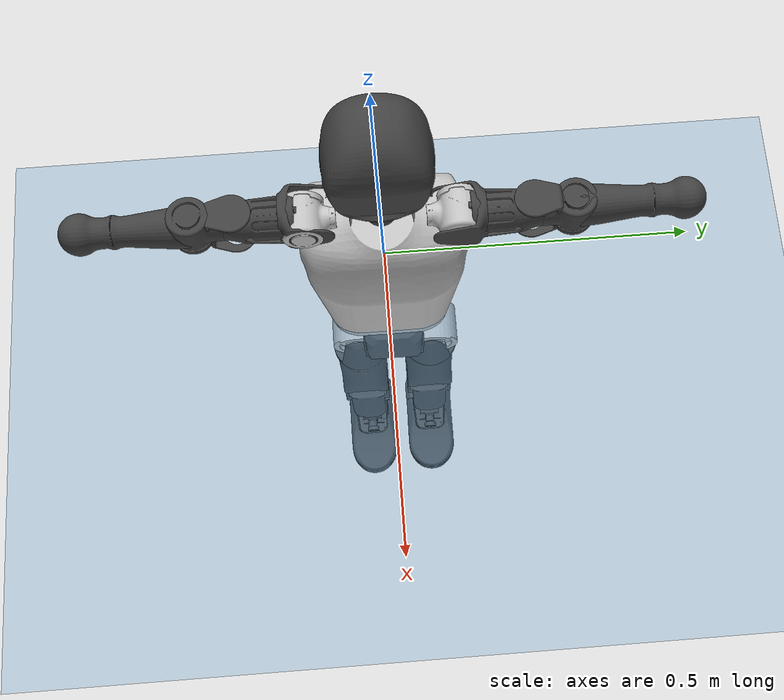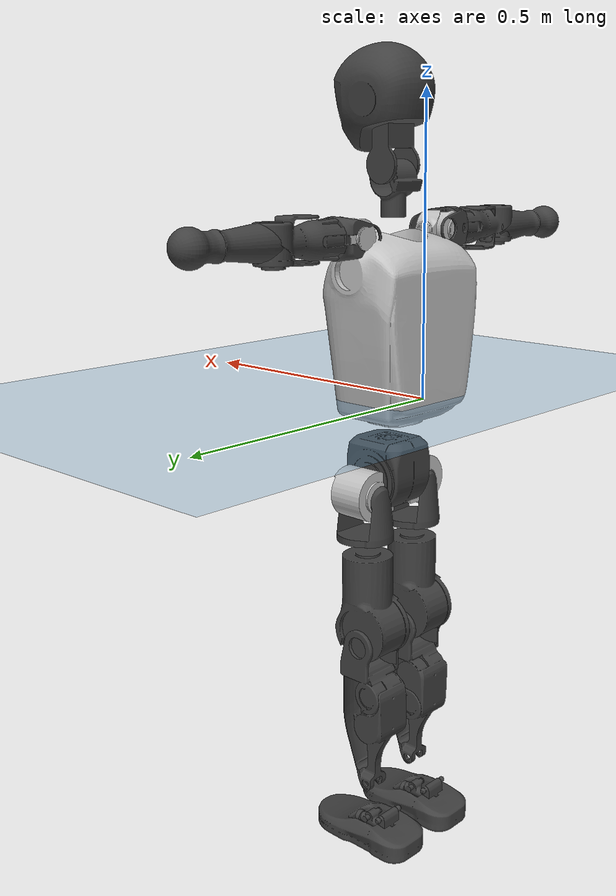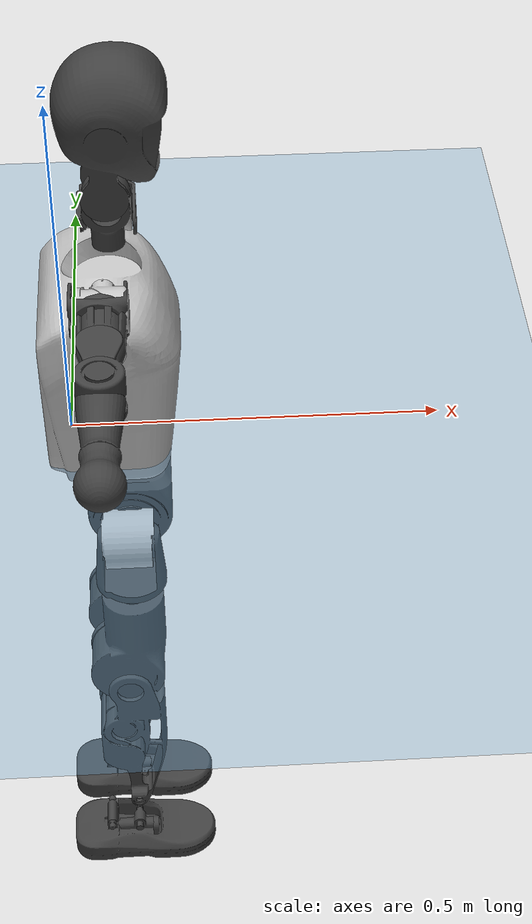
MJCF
<mujoco model="T1">
  <compiler angle="radian" assetdir="assets" balanceinertia="true" inertiafromgeom="false"/>

  <option timestep="0.005" density="1.2" viscosity="2e-05"/>

  <size nkey="1"/>

  <visual>
    <quality shadowsize="8192"/>
    <map shadowclip="0.5"/>
  </visual>

  <default>
    <default class="/">
      <joint armature="0.01" damping="0.01" frictionloss="0.1"/>
      <geom contype="0" conaffinity="0" group="1" solref="-1000 -80"/>
      <site size="0.01 0.005 0.005" group="5"/>
      <general forcelimited="true" biastype="affine" gainprm="25" biasprm="0 -25 -0.6"/>
      <default class="t1">
        <geom rgba="0.25 0.25 0.25 1"/>
        <default class="visual">
          <geom type="mesh" group="2"/>
        </default>
        <default class="collision">
          <geom group="3"/>
        </default>
        <default class="foot">
          <geom size="0.1115 0.05 0.015" type="box" condim="6" group="4" priority="1" solimp="0.015 1 0.015"/>
        </default>
        <default class="reward_collision_sphere">
          <geom group="5" rgba="1 0 0 1"/>
        </default>
      </default>
    </default>
  </default>

  <asset>
    <texture type="skybox" colorspace="auto" name="//unnamed_texture_0" builtin="gradient" rgb1="0.95 0.95 0.95" rgb2="0.95 0.95 0.95" width="100" height="600"/>
    <texture type="2d" colorspace="auto" name="texplane" builtin="checker" rgb1="0.345 0.575 0.748" rgb2="0.345 0.575 0.748" markrgb="1 1 1" width="512" height="512"/>
    <material name="MatPlane" class="/" texture="texplane" texuniform="true" texrepeat="2 2" specular="0.9"/>
    <mesh name="Trunk" class="/" file="Trunk.stl"/>
    <mesh name="H1" class="/" file="H1.stl"/>
    <mesh name="H2" class="/" file="H2.stl"/>
    <mesh name="AL1" class="/" file="AL1.stl"/>
    <mesh name="AL2" class="/" file="AL2.stl"/>
    <mesh name="AL3" class="/" file="AL3.stl"/>
    <mesh name="left_hand_link" class="/" file="left_hand_link.stl"/>
    <mesh name="AR1" class="/" file="AR1.stl"/>
    <mesh name="AR2" class="/" file="AR2.stl"/>
    <mesh name="AR3" class="/" file="AR3.stl"/>
    <mesh name="right_hand_link" class="/" file="right_hand_link.stl"/>
    <mesh name="Waist" class="/" file="Waist.stl"/>
    <mesh name="Hip_Pitch_Left" class="/" file="Hip_Pitch_Left.stl"/>
    <mesh name="Hip_Roll_Left" class="/" file="Hip_Roll_Left.stl"/>
    <mesh name="Hip_Yaw_Left" class="/" file="Hip_Yaw_Left.stl"/>
    <mesh name="Shank_Left" class="/" file="Shank_Left.stl"/>
    <mesh name="Ankle_Cross_Left" class="/" file="Ankle_Cross_Left.stl"/>
    <mesh name="left_foot_link" class="/" file="left_foot_link.stl"/>
    <mesh name="Hip_Pitch_Right" class="/" file="Hip_Pitch_Right.stl"/>
    <mesh name="Hip_Roll_Right" class="/" file="Hip_Roll_Right.stl"/>
    <mesh name="Hip_Yaw_Right" class="/" file="Hip_Yaw_Right.stl"/>
    <mesh name="Shank_Right" class="/" file="Shank_Right.stl"/>
    <mesh name="Ankle_Cross_Right" class="/" file="Ankle_Cross_Right.stl"/>
    <mesh name="right_foot_link" class="/" file="right_foot_link.stl"/>
  </asset>

  <worldbody>
    <geom name="floor" class="/" size="100 100 0.125" type="plane" group="0" material="MatPlane"/>
    <light name="toplight_shadow" class="/" pos="0 0 5" dir="0.0990148 0.0990148 -0.990148" type="directional" ambient="0.04 0.04 0.04" diffuse="0.55 0.55 0.55" specular="0.12 0.12 0.12"/>
    <light name="toplight_fill" class="/" pos="0 0 5" dir="0.0990148 0.0990148 -0.990148" type="directional" castshadow="false" ambient="0.04 0.04 0.04" diffuse="0.3 0.3 0.3" specular="0.08 0.08 0.08"/>
    <body name="trunk" childclass="t1" pos="-0.000253252 0.00244344 -0.00190377" quat="1 -0.000371081 1.3358e-05 -0.000143437">
      <inertial pos="0.0552621 0.000366176 0.132217" quat="0.999965 -0.000160153 -0.00823885 -0.00115788" mass="10.5202" diaginertia="0.124086 0.00532687 0.157329"/>
      <joint name="//unnamed_joint_0" type="free" armature="0" damping="0" frictionloss="0"/>
      <geom name="//unnamed_geom_1" class="visual" rgba="0.76 0.76 0.76 1" mesh="Trunk"/>
      <geom name="//unnamed_geom_2" class="collision" size="0.0724701 0.0966269 0.14494" pos="0.0640251 0 0.149031" type="box"/>
      <geom name="//unnamed_geom_3" class="reward_collision_sphere" size="0.111121" pos="0.0640251 0 0.124192"/>
      <geom name="//unnamed_geom_4" class="reward_collision_sphere" size="0.014494" pos="0.0640251 0.0501328 0"/>
      <geom name="//unnamed_geom_5" class="reward_collision_sphere" size="0.014494" pos="0.0640251 -0.0501328 0"/>
      <geom name="//unnamed_geom_6" class="reward_collision_sphere" size="0.014494" pos="0.0640251 0.0631084 0.223546"/>
      <geom name="//unnamed_geom_7" class="reward_collision_sphere" size="0.014494" pos="0.0640251 -0.0631084 0.223546"/>
      <site name="imu" pos="-0.00100668 -0.0167349 -0.00699869" size="0.00966269"/>
      <camera name="track" pos="0 -1.1796 0" quat="0.707107 0.707107 0 0" mode="trackcom"/>
      <camera name="ego_camera" pos="0.130184 0 0.521607" quat="-0.5 -0.5 0.5 0.5"/>
      <body name="H1" pos="0.0669483 -0.000417947 0.299889" quat="0.999999 -0.00152517 0.000289761 3.56585e-06">
        <inertial pos="-0.00082457 -0.00417052 0.0725954" quat="0.768359 -0.0106782 0.00818171 0.639877" mass="0.40806" diaginertia="0.000323605 1.56767e-05 0.000419141"/>
        <joint name="AAHead_yaw" pos="0 0 0" axis="0.00610283 -0.00741821 0.999954" range="-1.54192 1.47034" armature="0.00913211" damping="0.011069" frictionloss="0.0992573"/>
        <geom name="//unnamed_geom_8" class="visual" mesh="H1"/>
        <body name="H2" pos="-0.000480683 0.00105724 0.0832595" quat="0.999995 0.000583629 0.00179983 0.00235698">
          <inertial pos="0.00668096 -0.00045854 0.120628" quat="0.988402 0.105315 -0.076976 -0.0777477" mass="0.56954" diaginertia="0.00279729 0.000131953 0.00529924"/>
          <joint name="Head_pitch" pos="0 0 0" axis="0.00566006 -0.999962 -0.00667211" stiffness="0.000833639" range="-1.17319 0.350058" armature="0.00994313" damping="0.00969415" frictionloss="0.0989355"/>
          <geom name="//unnamed_geom_9" class="visual" mesh="H2"/>
          <geom name="//unnamed_geom_10" class="collision" size="0.0773015" pos="0.0106709 0 0.136611"/>
          <geom name="//unnamed_geom_11" class="reward_collision_sphere" size="0.0869642" pos="0.0213417 0 0.124192"/>
        </body>
      </body>
      <body name="AL1" pos="0.0633024 0.0631625 0.272921" quat="1 -0.000261974 0.000468271 0.000635147">
        <inertial pos="0.00109042 0.0264462 -5.87611e-05" quat="0.520193 0.493711 -0.499678 0.485767" mass="0.497924" diaginertia="0.00190975 9.43552e-05 0.000869499"/>
        <joint name="Left_Shoulder_Pitch" pos="0 0 0" axis="-0.00100971 0.999999 0.000917223" range="-3.39806 1.20633" armature="0.0102563" damping="0.00530011" frictionloss="0.0918291"/>
        <geom name="//unnamed_geom_12" class="visual" rgba="0.76 0.76 0.76 1" mesh="AL1"/>
        <body name="AL2" pos="0.00162051 0.0279425 -0.000268528" quat="0.999998 -0.00121325 0.00139347 0.000612363">
          <inertial pos="-0.00136202 0.0226486 9.65691e-05" quat="0.488774 0.512083 -0.486986 0.511581" mass="0.149616" diaginertia="0.000579193 2.5201e-05 0.000562332"/>
          <joint name="Left_Shoulder_Roll" pos="0 0 0" axis="-0.999955 -0.00368069 0.00871028" range="-1.57264 1.69218" armature="0.00933642" damping="0" frictionloss="0.0860355"/>
          <geom name="//unnamed_geom_13" class="visual" mesh="AL2"/>
          <body name="AL3" pos="0.0010136 0.034437 -0.000403789" quat="0.999999 0.00163975 -0.000398884 -0.000328107">
            <inertial pos="-0.00451191 0.0527181 0.000453931" quat="0.712612 0.701019 0.00337872 -0.027321" mass="0.857413" diaginertia="0.0160854 0.000782954 0.00173328"/>
            <joint name="Left_Elbow_Pitch" pos="0 0 0" axis="0.0120471 -0.999926 -0.00162964" range="-2.29977 2.16457" armature="0.00839555" damping="0.00973095" frictionloss="0.0711941"/>
            <geom name="//unnamed_geom_14" class="visual" mesh="AL3"/>
            <geom name="//unnamed_geom_15" class="collision" size="0.0289881 0.0724701" pos="0 0.0294899 0" quat="0.707105 0.707108 0 0" type="cylinder"/>
            <geom name="//unnamed_geom_16" class="reward_collision_sphere" size="0.0347857"/>
            <body name="left_hand_link" pos="0.000524113 0.0881391 0.00257704" quat="0.999997 0.00213487 0.00128425 0.00027935">
              <inertial pos="-0.00266641 0.063133 0.00177075" quat="0.702945 0.711182 0.000403107 0.00941613" mass="0.290347" diaginertia="0.0105247 0.000559441 0.000653746"/>
              <joint name="Left_Elbow_Yaw" pos="0 0 0" axis="0.00435433 -0.0139551 0.999893" stiffness="0.00555175" range="-2.45323 -0.102856" armature="0.010766" damping="0.0216152" frictionloss="0.0987839"/>
              <geom name="//unnamed_geom_17" class="visual" mesh="left_hand_link"/>
              <geom name="//unnamed_geom_18" class="collision" size="0.0289881 0.0845485" pos="0 0.0766737 0" quat="0.707105 0.707108 0 0" type="cylinder"/>
              <geom name="//unnamed_geom_19" class="reward_collision_sphere" size="0.0483134"/>
              <geom name="//unnamed_geom_20" class="reward_collision_sphere" size="0.0338194" pos="0 0.0648778 0"/>
              <geom name="//unnamed_geom_21" class="reward_collision_sphere" size="0.0338194" pos="0 0.126807 0"/>
            </body>
          </body>
        </body>
      </body>
      <body name="AR1" pos="0.0585329 -0.0646837 0.275902" quat="1 8.83326e-05 0.000450404 0.000137073">
        <inertial pos="-0.00174859 -0.0234606 0.00063272" quat="0.49741 0.498765 -0.511407 0.492219" mass="0.477928" diaginertia="0.0018725 9.13914e-05 0.000854721"/>
        <joint name="Right_Shoulder_Pitch" pos="0 0 0" axis="-0.022796 -0.999618 -0.0156117" range="-1.23135 3.22364" armature="0.00855267" damping="0.0109457" frictionloss="0.119288"/>
        <geom name="//unnamed_geom_22" class="visual" rgba="0.76 0.76 0.76 1" mesh="AR1"/>
        <body name="AR2" pos="-0.00575298 -0.0236059 0.00208862" quat="1 -1.34341e-05 -4.68686e-05 1.22644e-06">
          <inertial pos="0.00236589 -0.0231302 0.00324245" quat="0.515128 0.48105 -0.51688 0.48587" mass="0.129144" diaginertia="0.000529345 2.31957e-05 0.000485245"/>
          <joint name="Right_Shoulder_Roll" pos="0 0 0" axis="-0.99991 -0.00522106 -0.012329" stiffness="0.011323" range="-1.74619 1.53778" armature="0.00848282" damping="0.0162129" frictionloss="0.0844153"/>
          <geom name="//unnamed_geom_23" class="visual" mesh="AR2"/>
          <body name="AR3" pos="0.00311473 -0.0333795 -0.000968017" quat="1 -5.2391e-05 2.94354e-05 -0.000127602">
            <inertial pos="0.000531603 -0.0524726 0.00161124" quat="0.707666 0.706526 0.00399736 -0.00372272" mass="0.823555" diaginertia="0.0164012 0.000847416 0.0017006"/>
            <joint name="Right_Elbow_Pitch" pos="0 0 0" axis="0.00433818 0.999977 0.00520636" stiffness="0.0319183" range="-2.22781 2.3295" armature="0.00890416" damping="0" frictionloss="0.100467"/>
            <geom name="//unnamed_geom_24" class="visual" mesh="AR3"/>
            <geom name="//unnamed_geom_25" class="collision" size="0.0289881 0.0724701" pos="0 -0.0294899 0" quat="0.707105 0.707108 0 0" type="cylinder"/>
            <geom name="//unnamed_geom_26" class="reward_collision_sphere" size="0.0347857"/>
            <body name="right_hand_link" pos="-0.000294289 -0.0870755 -0.00485404" quat="1 0.000163419 0.00012005 8.34786e-05">
              <inertial pos="-0.00246864 -0.064742 0.00574236" quat="0.705689 0.708513 0.00288837 0.00201905" mass="0.317296" diaginertia="0.0117001 0.000567567 0.000641529"/>
              <joint name="Right_Elbow_Yaw" pos="0 0 0" axis="0.0025069 -0.0055186 0.999982" range="0.0314737 2.37527" armature="0.00858666" damping="0.00243411" frictionloss="0.0874716"/>
              <geom name="//unnamed_geom_27" class="visual" mesh="right_hand_link"/>
              <geom name="//unnamed_geom_28" class="collision" size="0.0289881 0.0845485" pos="0 -0.0766737 0" quat="0.707105 0.707108 0 0" type="cylinder"/>
              <geom name="//unnamed_geom_29" class="reward_collision_sphere" size="0.0483134"/>
              <geom name="//unnamed_geom_30" class="reward_collision_sphere" size="0.0338194" pos="0 -0.0648778 0"/>
              <geom name="//unnamed_geom_31" class="reward_collision_sphere" size="0.0338194" pos="0 -0.126807 0"/>
            </body>
          </body>
        </body>
      </body>
      <body name="Waist" pos="0.0732813 0.00293325 -0.140863" quat="1 -0.000274737 -0.000230019 -0.000850773">
        <inertial pos="0.00536197 0.00194154 0.0117491" quat="0.983627 0.000304882 -0.180199 0.00260792" mass="2.44753" diaginertia="0.00776999 0.000405906 0.0147636"/>
        <joint name="Waist" pos="0 0 0" axis="0.00127357 -0.00243737 0.999996" range="-1.57494 1.56315" armature="0.0107305" damping="0.00100095" frictionloss="0.118365"/>
        <geom name="//unnamed_geom_32" class="visual" mesh="Waist"/>
        <body name="Hip_Pitch_Left" pos="0.00197399 0.0665598 -0.00248086" quat="0.999999 0.00100801 -8.47655e-05 -0.000654403">
          <inertial pos="0.0021415 -0.00709043 -0.0217295" quat="0.975645 0.218776 0.015881 0.0009296" mass="0.92434" diaginertia="0.00239911 9.64137e-05 0.00362939"/>
          <joint name="Left_Hip_Pitch" pos="0 0 0" axis="0.0103907 0.999889 0.0106526" stiffness="0.0221003" range="-1.85391 1.61137" armature="0.00859902" damping="0.0178191" frictionloss="0.104021"/>
          <geom name="//unnamed_geom_33" class="visual" rgba="0.76 0.76 0.76 1" mesh="Hip_Pitch_Left"/>
          <body name="Hip_Roll_Left" pos="-0.00366708 -0.00262903 -0.0251606" quat="0.999996 0.00177643 -0.00185743 -0.00152664">
            <inertial pos="0.00520538 0.00241834 -0.0644652" quat="0.723223 0.00738506 -0.0136688 0.69044" mass="0.364189" diaginertia="0.00257512 0.000114918 0.00152846"/>
            <joint name="Left_Hip_Roll" pos="0 0 0" axis="-0.999556 -0.0288398 -0.00745891" range="-1.5354 0.120497" armature="0.00800642" damping="0.0204181" frictionloss="0.0881005"/>
            <geom name="//unnamed_geom_34" class="visual" mesh="Hip_Roll_Left"/>
            <geom name="//unnamed_geom_35" class="reward_collision_sphere" size="0.0531448"/>
            <body name="Hip_Yaw_Left" pos="-0.00642887 -0.00200703 -0.104872" quat="0.999998 -0.000666468 0.00208525 -0.000165598">
              <inertial pos="-0.00496438 -0.00320832 -0.111278" quat="0.704845 -0.0319638 -0.0352359 0.707764" mass="1.8645" diaginertia="0.0350494 0.00174616 0.00725051"/>
              <joint name="Left_Hip_Yaw" pos="0 0 0" axis="-0.00163903 0.00231729 -0.999996" range="-0.96222 1.09807" armature="0.0106981" damping="0" frictionloss="0.100327"/>
              <geom name="//unnamed_geom_36" class="visual" mesh="Hip_Yaw_Left"/>
              <geom name="//unnamed_geom_37" class="collision" size="0.0483134 0.0773015" type="cylinder"/>
              <body name="Shank_Left" pos="-0.0131839 -0.00129068 -0.161562" quat="1 0.000764511 -2.93913e-05 -0.000130051">
                <inertial pos="-0.00902202 0.0034457 -0.152844" quat="0.997874 0.00802622 -0.0138069 0.0631892" mass="1.59047" diaginertia="0.0481983 0.00256681 0.00582668"/>
                <joint name="Left_Knee_Pitch" pos="0 0 0" axis="0.00790347 0.999958 0.00472538" range="0.00137887 2.36334" armature="0.00968889" damping="0.00676479" frictionloss="0.106852"/>
                <geom name="//unnamed_geom_38" class="visual" mesh="Shank_Left"/>
                <geom name="//unnamed_geom_39" class="collision" size="0.0483134 0.0724701" pos="0 0 -0.149031" type="cylinder"/>
                <geom name="//unnamed_geom_40" class="reward_collision_sphere" size="0.0628075"/>
                <body name="Ankle_Cross_Left" pos="0.0010457 0.00135512 -0.352501" quat="1 0.00014821 5.55688e-05 3.35132e-05">
                  <inertial pos="-0.00543049 0.00205647 -0.0102825" quat="0.443902 0.551262 0.550552 0.442668" mass="0.0613125" diaginertia="3.96238e-05 1.7618e-06 3.28077e-05"/>
                  <joint name="Left_Ankle_Pitch" pos="0 0 0" axis="0.0046286 0.999989 0.000999577" range="-0.912247 0.387931" armature="0.0102444" damping="0.0104861" frictionloss="0.103344"/>
                  <geom name="//unnamed_geom_41" class="visual" mesh="Ankle_Cross_Left"/>
                  <body name="left_foot_link" pos="0.000696527 0.000412436 -0.014375" quat="0.999999 -0.000966906 0.000258146 0.000351532">
                    <inertial pos="0.00141164 -0.00231418 -0.0115546" quat="0.00140989 0.62009 0.00263536 0.784525" mass="0.667742" diaginertia="0.00353999 0.00017527 0.00670562"/>
                    <joint name="Left_Ankle_Roll" pos="0 0 0" axis="-0.999999 0.000469041 0.00124729" stiffness="0.00348956" range="-0.480205 0.349969" armature="0.00724514" damping="0.00969275" frictionloss="0.105155"/>
                    <geom name="//unnamed_geom_42" class="visual" mesh="left_foot_link"/>
                    <geom name="left_foot" class="foot" size="0.0954888 0.0539689 0.0134757" pos="0.0106709 0 -0.0186288"/>
                    <geom name="//unnamed_geom_44" class="reward_collision_sphere" size="0.050246" pos="0.0106709 0 -0.0186288"/>
                    <geom name="//unnamed_geom_45" class="reward_collision_sphere" size="0.0289881" pos="0.101373 -0.0135653 -0.0186288"/>
                    <geom name="//unnamed_geom_46" class="reward_collision_sphere" size="0.0289881" pos="-0.074696 -0.0135653 -0.0186288"/>
                    <site name="left_foot" class="foot" pos="0.0106709 0 -0.0186288" size="0.00966269"/>
                  </body>
                </body>
              </body>
            </body>
          </body>
        </body>
        <body name="Hip_Pitch_Right" pos="-0.00288678 -0.0616081 0.00221514" quat="0.999999 -0.000951001 -0.00119507 0.000104939">
          <inertial pos="0.00400958 0.00644054 -0.0224743" quat="0.973323 -0.228916 0.0147895 -0.00456735" mass="0.896491" diaginertia="0.00248217 0.000104398 0.00365792"/>
          <joint name="Right_Hip_Pitch" pos="0 0 0" axis="0.0117075 -0.999928 -0.00249049" range="-1.52129 1.79843" armature="0.00663849" damping="0.00960303" frictionloss="0.0934009"/>
          <geom name="//unnamed_geom_47" class="visual" rgba="0.76 0.76 0.76 1" mesh="Hip_Pitch_Right"/>
          <body name="Hip_Roll_Right" pos="0.00152223 0.000144673 -0.028174" quat="0.999999 0.00114221 0.000336946 0.00067003">
            <inertial pos="0.00163792 0.00455885 -0.064996" quat="0.704216 0.00371045 0.0094069 0.709914" mass="0.385851" diaginertia="0.00267362 0.00011792 0.00164561"/>
            <joint name="Right_Hip_Roll" pos="0 0 0" axis="-0.999801 0.0174052 -0.00970023" range="-0.238262 1.57828" armature="0.00966315" damping="0.0188573" frictionloss="0.106477"/>
            <geom name="//unnamed_geom_48" class="visual" mesh="Hip_Roll_Right"/>
            <geom name="//unnamed_geom_49" class="reward_collision_sphere" size="0.0531448"/>
            <body name="Hip_Yaw_Right" pos="-0.00239078 8.09505e-05 -0.104552" quat="1 -8.70573e-05 -0.000722835 0.000475332">
              <inertial pos="-0.00818286 0.00583522 -0.109842" quat="0.71724 -0.0241219 -0.0340194 0.695577" mass="2.10922" diaginertia="0.0387454 0.00196664 0.0080254"/>
              <joint name="Right_Hip_Yaw" pos="0 0 0" axis="3.52642e-05 7.11664e-06 -1" range="-1.00836 0.948192" armature="0.0085763" damping="0.0164185" frictionloss="0.0974001"/>
              <geom name="//unnamed_geom_50" class="visual" mesh="Hip_Yaw_Right"/>
              <geom name="//unnamed_geom_51" class="collision" size="0.0483134 0.0773015" type="cylinder"/>
              <body name="Shank_Right" pos="-0.0122775 0.000406415 -0.165532" quat="1 -0.000470594 0.000493189 -2.07385e-06">
                <inertial pos="-0.0064151 0.000783092 -0.153481" quat="0.999534 -0.00274368 -0.0241232 -0.018512" mass="1.65487" diaginertia="0.0541888 0.0025166 0.00596659"/>
                <joint name="Right_Knee_Pitch" pos="0 0 0" axis="0.0245003 -0.9997 -0.000411621" stiffness="0.0169466" range="-2.3291 0.0209524" armature="0.00986394" damping="0.015942" frictionloss="0.0993303"/>
                <geom name="//unnamed_geom_52" class="visual" mesh="Shank_Right"/>
                <geom name="//unnamed_geom_53" class="collision" size="0.0483134 0.0724701" pos="0 0 -0.149031" type="cylinder"/>
                <geom name="//unnamed_geom_54" class="reward_collision_sphere" size="0.0628075"/>
                <body name="Ankle_Cross_Right" pos="-0.00221522 -0.00163821 -0.347975" quat="0.999999 -0.0011922 0.000239948 0.000366111">
                  <inertial pos="-0.00636381 0.000156706 -0.00549482" quat="0.432275 0.554597 0.566768 0.429342" mass="0.068508" diaginertia="4.49236e-05 1.86001e-06 3.71186e-05"/>
                  <joint name="Right_Ankle_Pitch" pos="0 0 0" axis="0.006027 -0.999904 0.0124684" stiffness="0.0132519" range="-0.3757 0.900935" armature="0.00923626" damping="0.013877" frictionloss="0.108027"/>
                  <geom name="//unnamed_geom_55" class="visual" mesh="Ankle_Cross_Right"/>
                  <body name="right_foot_link" pos="-0.00171234 0.000315979 -0.0154908" quat="1 0.000132847 0.000695781 0.000110663">
                    <inertial pos="0.00580799 0.00140143 -0.0121885" quat="-0.00114494 0.617672 0.00527525 0.786417" mass="0.614959" diaginertia="0.00363875 0.000165008 0.00637204"/>
                    <joint name="Right_Ankle_Roll" pos="0 0 0" axis="-0.999999 0.00132434 -0.000881315" range="-0.487494 0.472904" armature="0.0100053" damping="0" frictionloss="0.0996955"/>
                    <geom name="//unnamed_geom_56" class="visual" mesh="right_foot_link"/>
                    <geom name="right_foot" class="foot" size="0.0989856 0.0469658 0.0146679" pos="0.0106709 0 -0.0186288"/>
                    <geom name="//unnamed_geom_58" class="reward_collision_sphere" size="0.0386507"/>
                    <geom name="//unnamed_geom_59" class="reward_collision_sphere" size="0.0289881" pos="0.0106709 0 -0.0186288"/>
                    <geom name="//unnamed_geom_60" class="reward_collision_sphere" size="0.0289881" pos="0.101373 0.0135653 -0.0186288"/>
                    <geom name="//unnamed_geom_61" class="reward_collision_sphere" size="0.0289881" pos="-0.074696 0.0135653 -0.0186288"/>
                    <site name="right_foot" class="foot" pos="0.0106709 0 -0.0186288" size="0.00966269"/>
                  </body>
                </body>
              </body>
            </body>
          </body>
        </body>
      </body>
    </body>
  </worldbody>

  <contact>
    <pair class="/" geom1="floor" geom2="left_foot" name="//unnamed_contact_0"/>
    <pair class="/" geom1="floor" geom2="right_foot" name="//unnamed_contact_1"/>
  </contact>

  <actuator>
    <general name="AAHead_yaw" class="/" joint="AAHead_yaw" forcerange="-6.48561 6.48561" gainprm="25.204" biasprm="0 -25.204 -0.578452"/>
    <general name="Head_pitch" class="/" joint="Head_pitch" forcerange="-6.37644 6.37644" gainprm="25.204" biasprm="0 -25.204 -0.578452"/>
    <general name="Left_Shoulder_Pitch" class="/" joint="Left_Shoulder_Pitch" forcerange="-16.3477 16.3477" gainprm="25.204" biasprm="0 -25.204 -0.578452"/>
    <general name="Left_Shoulder_Roll" class="/" joint="Left_Shoulder_Roll" forcerange="-18.5596 18.5596" gainprm="25.204" biasprm="0 -25.204 -0.578452"/>
    <general name="Left_Elbow_Pitch" class="/" joint="Left_Elbow_Pitch" forcerange="-14.753 14.753" gainprm="25.204" biasprm="0 -25.204 -0.578452"/>
    <general name="Left_Elbow_Yaw" class="/" joint="Left_Elbow_Yaw" forcerange="-17.9537 17.9537" gainprm="25.204" biasprm="0 -25.204 -0.578452"/>
    <general name="Right_Shoulder_Pitch" class="/" joint="Right_Shoulder_Pitch" forcerange="-20.7084 20.7084" gainprm="25.204" biasprm="0 -25.204 -0.578452"/>
    <general name="Right_Shoulder_Roll" class="/" joint="Right_Shoulder_Roll" forcerange="-17.1139 17.1139" gainprm="25.204" biasprm="0 -25.204 -0.578452"/>
    <general name="Right_Elbow_Pitch" class="/" joint="Right_Elbow_Pitch" forcerange="-14.5439 14.5439" gainprm="25.204" biasprm="0 -25.204 -0.578452"/>
    <general name="Right_Elbow_Yaw" class="/" joint="Right_Elbow_Yaw" forcerange="-18.3019 18.3019" gainprm="25.204" biasprm="0 -25.204 -0.578452"/>
    <general name="Waist" class="/" joint="Waist" forcerange="-26.8494 26.8494" gainprm="25.204" biasprm="0 -25.204 -0.578452"/>
    <general name="Left_Hip_Pitch" class="/" joint="Left_Hip_Pitch" forcerange="-40.6235 40.6235" gainprm="25.204" biasprm="0 -25.204 -0.578452"/>
    <general name="Left_Hip_Roll" class="/" joint="Left_Hip_Roll" forcerange="-25.0169 25.0169" gainprm="25.204" biasprm="0 -25.204 -0.578452"/>
    <general name="Left_Hip_Yaw" class="/" joint="Left_Hip_Yaw" forcerange="-35.1324 35.1324" gainprm="25.204" biasprm="0 -25.204 -0.578452"/>
    <general name="Left_Knee_Pitch" class="/" joint="Left_Knee_Pitch" forcerange="-53.4878 53.4878" gainprm="25.204" biasprm="0 -25.204 -0.578452"/>
    <general name="Left_Ankle_Pitch" class="/" joint="Left_Ankle_Pitch" forcerange="-24.1254 24.1254" gainprm="25.204" biasprm="0 -25.204 -0.578452"/>
    <general name="Left_Ankle_Roll" class="/" joint="Left_Ankle_Roll" forcerange="-13.6819 13.6819" gainprm="25.204" biasprm="0 -25.204 -0.578452"/>
    <general name="Right_Hip_Pitch" class="/" joint="Right_Hip_Pitch" forcerange="-43.0253 43.0253" gainprm="25.204" biasprm="0 -25.204 -0.578452"/>
    <general name="Right_Hip_Roll" class="/" joint="Right_Hip_Roll" forcerange="-28.9289 28.9289" gainprm="25.204" biasprm="0 -25.204 -0.578452"/>
    <general name="Right_Hip_Yaw" class="/" joint="Right_Hip_Yaw" forcerange="-28.9067 28.9067" gainprm="25.204" biasprm="0 -25.204 -0.578452"/>
    <general name="Right_Knee_Pitch" class="/" joint="Right_Knee_Pitch" forcerange="-51.4873 51.4873" gainprm="25.204" biasprm="0 -25.204 -0.578452"/>
    <general name="Right_Ankle_Pitch" class="/" joint="Right_Ankle_Pitch" forcerange="-19.1389 19.1389" gainprm="25.204" biasprm="0 -25.204 -0.578452"/>
    <general name="Right_Ankle_Roll" class="/" joint="Right_Ankle_Roll" forcerange="-16.908 16.908" gainprm="25.204" biasprm="0 -25.204 -0.578452"/>
  </actuator>

  <sensor>
    <gyro site="imu" name="imu_angular_velocity"/>
    <velocimeter site="imu" name="imu_linear_velocity"/>
    <framelinvel objtype="site" objname="left_foot" name="left_foot_global_linear_velocity"/>
    <framelinvel objtype="site" objname="right_foot" name="right_foot_global_linear_velocity"/>
  </sensor>

  <keyframe>
    <key name="home" qpos="0 0 0.6385 1 0 0 0 0 0 0 1.4 0 -0.4 0 -1.4 0 0.4 0 -0.4 0 0 0.8 -0.4 0 0.4 0 0 -0.8 0.4 0"/>
  </keyframe>
</mujoco>
